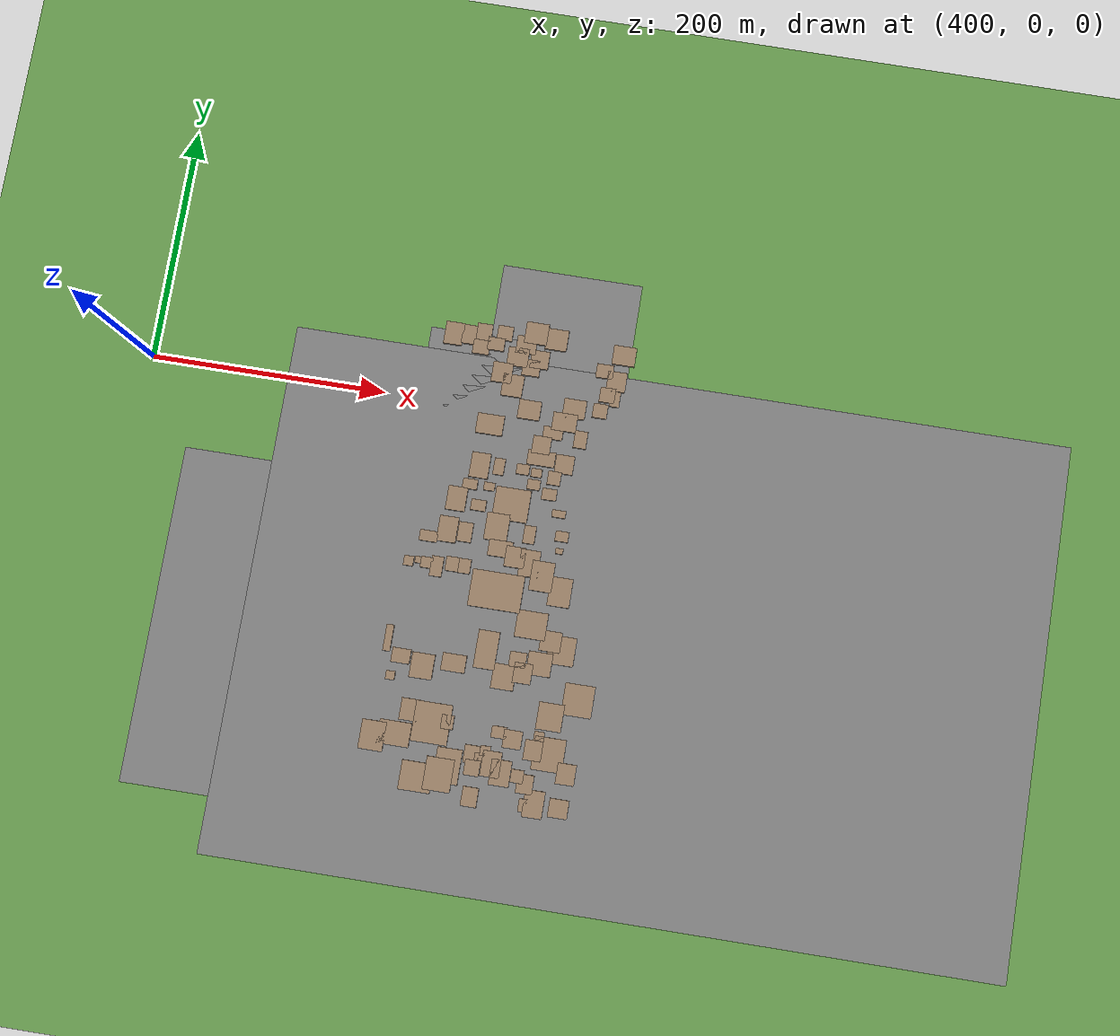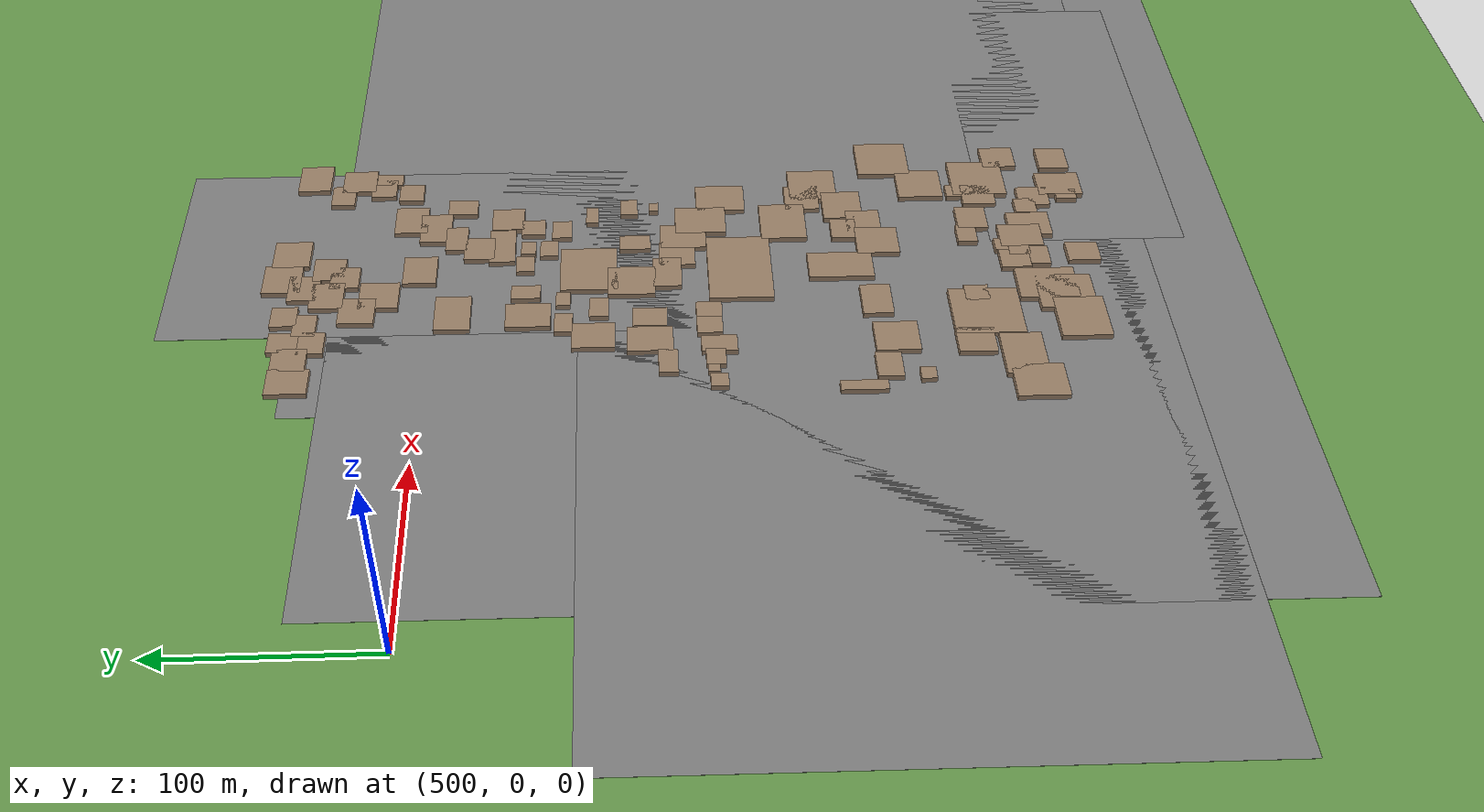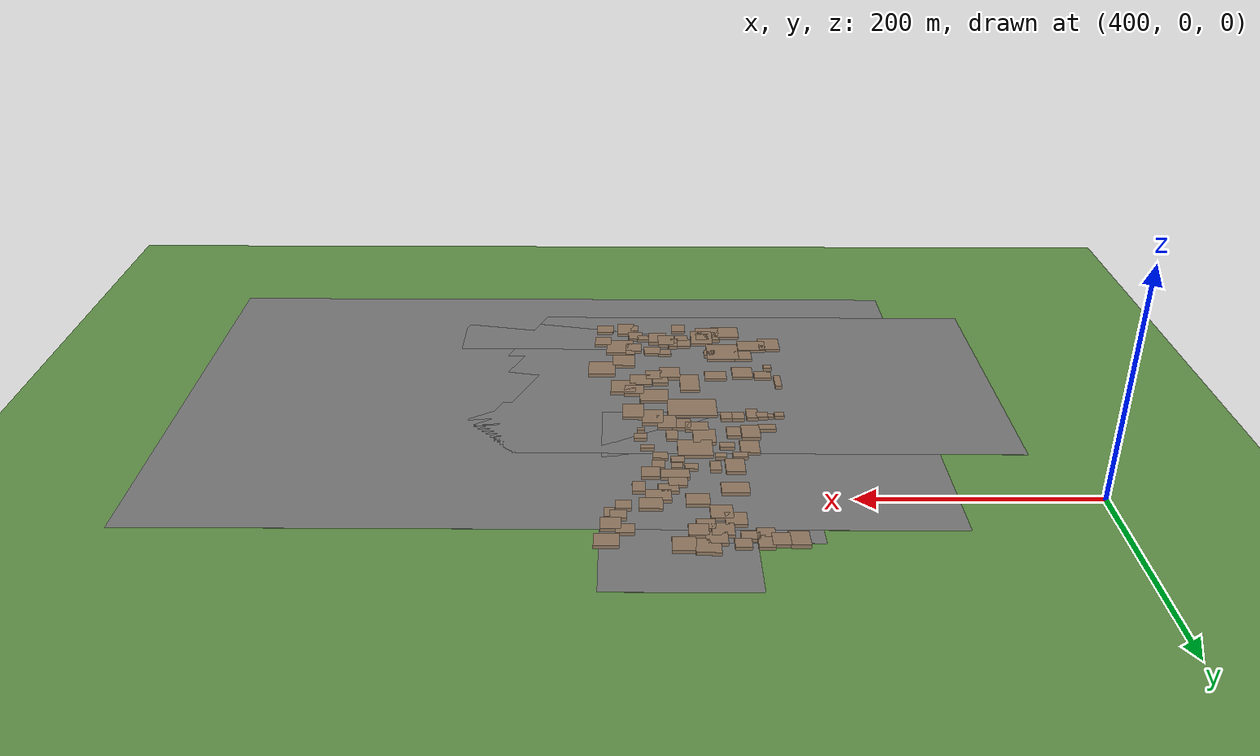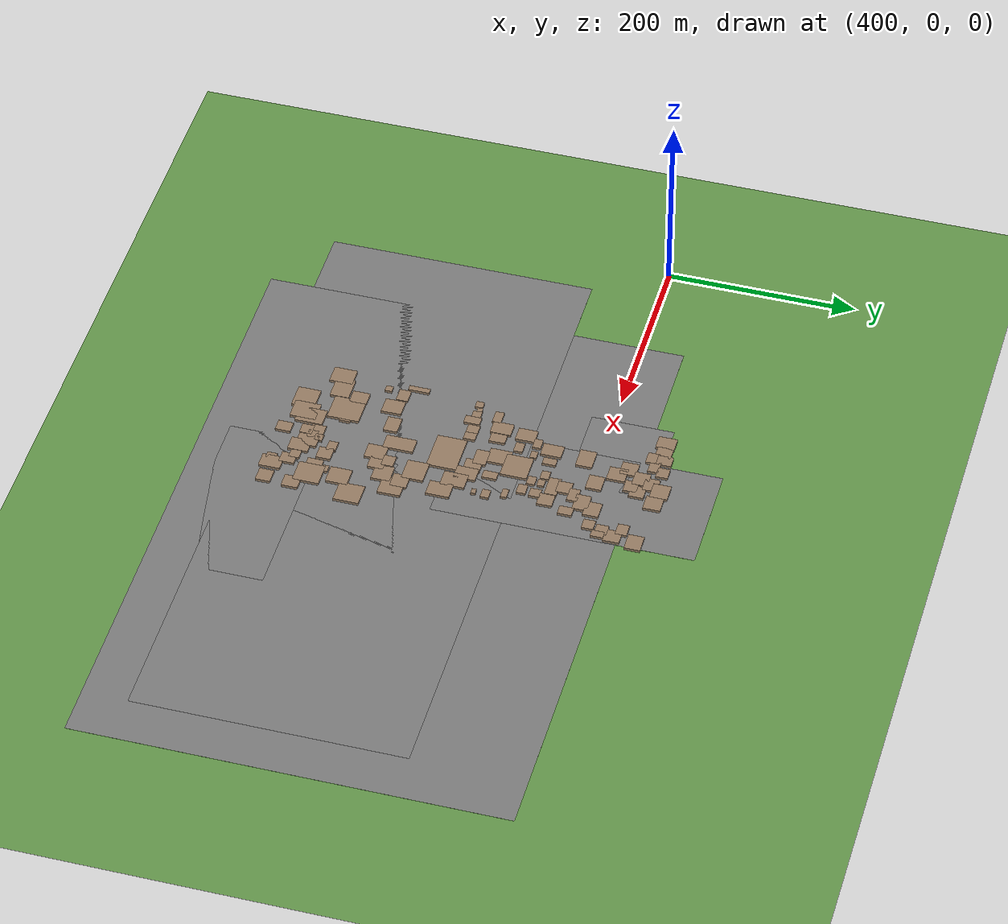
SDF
<sdf version="1.9">
 <world name="kimje_farmland">
  <model name="ground_plane">
   <static>true</static>
   <link name="link">
    <collision name="collision">
     <geometry><plane><normal>0 0 1</normal><size>2000 2000</size></plane></geometry>
    </collision>
    <visual name="visual">
     <geometry><plane><normal>0 0 1</normal><size>2000 2000</size></plane></geometry>
     <material><ambient>0.4 0.6 0.3 1</ambient><diffuse>0.4 0.6 0.3 1</diffuse></material>
    </visual>
   </link>
  </model>
  <model name="osm_2">
   <static>true</static>
   <pose>848.91 -178.82 0.040 0 0 0</pose>
   <link name="link">
    <collision name="collision"><geometry><box><size>665.56 447.34 0.080</size></box></geometry></collision>
    <visual name="visual">
     <geometry><box><size>665.56 447.34 0.080</size></box></geometry>
     <material><ambient>0.5 0.5 0.5 1</ambient><diffuse>0.5 0.5 0.5 1</diffuse></material>
    </visual>
   </link>
  </model>
  <model name="osm_8">
   <static>true</static>
   <pose>841.23 -327.30 0.040 0 0 0</pose>
   <link name="link">
    <collision name="collision"><geometry><box><size>201.72 97.64 0.080</size></box></geometry></collision>
    <visual name="visual">
     <geometry><box><size>201.72 97.64 0.080</size></box></geometry>
     <material><ambient>0.5 0.5 0.5 1</ambient><diffuse>0.5 0.5 0.5 1</diffuse></material>
    </visual>
   </link>
  </model>
  <model name="osm_14">
   <static>true</static>
   <pose>741.77 -10.32 0.040 0 0 0</pose>
   <link name="link">
    <collision name="collision"><geometry><box><size>120.49 273.38 0.080</size></box></geometry></collision>
    <visual name="visual">
     <geometry><box><size>120.49 273.38 0.080</size></box></geometry>
     <material><ambient>0.5 0.5 0.5 1</ambient><diffuse>0.5 0.5 0.5 1</diffuse></material>
    </visual>
   </link>
  </model>
  <model name="osm_36">
   <static>true</static>
   <pose>678.94 19.57 0.040 0 0 0</pose>
   <link name="link">
    <collision name="collision"><geometry><box><size>98.88 86.79 0.080</size></box></geometry></collision>
    <visual name="visual">
     <geometry><box><size>98.88 86.79 0.080</size></box></geometry>
     <material><ambient>0.5 0.5 0.5 1</ambient><diffuse>0.5 0.5 0.5 1</diffuse></material>
    </visual>
   </link>
  </model>
  <model name="osm_84">
   <static>true</static>
   <pose>786.82 -214.13 0.040 0 0 0</pose>
   <link name="link">
    <collision name="collision"><geometry><box><size>689.80 282.66 0.080</size></box></geometry></collision>
    <visual name="visual">
     <geometry><box><size>689.80 282.66 0.080</size></box></geometry>
     <material><ambient>0.5 0.5 0.5 1</ambient><diffuse>0.5 0.5 0.5 1</diffuse></material>
    </visual>
   </link>
  </model>
  <model name="osm_199">
   <static>true</static>
   <pose>658.45 -280.94 1.500 0 0 0</pose>
   <link name="link">
    <collision name="collision"><geometry><box><size>26.71 20.04 3.000</size></box></geometry></collision>
    <visual name="visual">
     <geometry><box><size>26.71 20.04 3.000</size></box></geometry>
     <material><ambient>0.6 0.5 0.4 1</ambient><diffuse>0.6 0.5 0.4 1</diffuse></material>
    </visual>
   </link>
  </model>
  <model name="osm_201">
   <static>true</static>
   <pose>803.54 -291.84 1.500 0 0 0</pose>
   <link name="link">
    <collision name="collision"><geometry><box><size>15.58 17.25 3.000</size></box></geometry></collision>
    <visual name="visual">
     <geometry><box><size>15.58 17.25 3.000</size></box></geometry>
     <material><ambient>0.6 0.5 0.4 1</ambient><diffuse>0.6 0.5 0.4 1</diffuse></material>
    </visual>
   </link>
  </model>
  <model name="osm_202">
   <static>true</static>
   <pose>786.92 -278.28 1.500 0 0 0</pose>
   <link name="link">
    <collision name="collision"><geometry><box><size>25.93 27.56 3.000</size></box></geometry></collision>
    <visual name="visual">
     <geometry><box><size>25.93 27.56 3.000</size></box></geometry>
     <material><ambient>0.6 0.5 0.4 1</ambient><diffuse>0.6 0.5 0.4 1</diffuse></material>
    </visual>
   </link>
  </model>
  <model name="osm_1157">
   <static>true</static>
   <pose>803.99 -230.90 1.500 0 0 0</pose>
   <link name="link">
    <collision name="collision"><geometry><box><size>25.01 26.59 3.000</size></box></geometry></collision>
    <visual name="visual">
     <geometry><box><size>25.01 26.59 3.000</size></box></geometry>
     <material><ambient>0.6 0.5 0.4 1</ambient><diffuse>0.6 0.5 0.4 1</diffuse></material>
    </visual>
   </link>
  </model>
  <model name="osm_1158">
   <static>true</static>
   <pose>783.18 -247.78 1.500 0 0 0</pose>
   <link name="link">
    <collision name="collision"><geometry><box><size>21.05 22.71 3.000</size></box></geometry></collision>
    <visual name="visual">
     <geometry><box><size>21.05 22.71 3.000</size></box></geometry>
     <material><ambient>0.6 0.5 0.4 1</ambient><diffuse>0.6 0.5 0.4 1</diffuse></material>
    </visual>
   </link>
  </model>
  <model name="osm_1159">
   <static>true</static>
   <pose>739.81 -221.30 1.500 0 0 0</pose>
   <link name="link">
    <collision name="collision"><geometry><box><size>18.96 21.02 3.000</size></box></geometry></collision>
    <visual name="visual">
     <geometry><box><size>18.96 21.02 3.000</size></box></geometry>
     <material><ambient>0.6 0.5 0.4 1</ambient><diffuse>0.6 0.5 0.4 1</diffuse></material>
    </visual>
   </link>
  </model>
  <model name="osm_1160">
   <static>true</static>
   <pose>754.90 -215.97 1.500 0 0 0</pose>
   <link name="link">
    <collision name="collision"><geometry><box><size>15.28 16.95 3.000</size></box></geometry></collision>
    <visual name="visual">
     <geometry><box><size>15.28 16.95 3.000</size></box></geometry>
     <material><ambient>0.6 0.5 0.4 1</ambient><diffuse>0.6 0.5 0.4 1</diffuse></material>
    </visual>
   </link>
  </model>
  <model name="osm_1161">
   <static>true</static>
   <pose>767.38 -206.30 1.500 0 0 0</pose>
   <link name="link">
    <collision name="collision"><geometry><box><size>20.24 19.60 3.000</size></box></geometry></collision>
    <visual name="visual">
     <geometry><box><size>20.24 19.60 3.000</size></box></geometry>
     <material><ambient>0.6 0.5 0.4 1</ambient><diffuse>0.6 0.5 0.4 1</diffuse></material>
    </visual>
   </link>
  </model>
  <model name="osm_1162">
   <static>true</static>
   <pose>749.17 -205.37 1.500 0 0 0</pose>
   <link name="link">
    <collision name="collision"><geometry><box><size>14.09 12.56 3.000</size></box></geometry></collision>
    <visual name="visual">
     <geometry><box><size>14.09 12.56 3.000</size></box></geometry>
     <material><ambient>0.6 0.5 0.4 1</ambient><diffuse>0.6 0.5 0.4 1</diffuse></material>
    </visual>
   </link>
  </model>
  <model name="osm_1163">
   <static>true</static>
   <pose>783.63 -192.51 1.500 0 0 0</pose>
   <link name="link">
    <collision name="collision"><geometry><box><size>22.82 23.97 3.000</size></box></geometry></collision>
    <visual name="visual">
     <geometry><box><size>22.82 23.97 3.000</size></box></geometry>
     <material><ambient>0.6 0.5 0.4 1</ambient><diffuse>0.6 0.5 0.4 1</diffuse></material>
    </visual>
   </link>
  </model>
  <model name="osm_1164">
   <static>true</static>
   <pose>773.58 -186.37 1.500 0 0 0</pose>
   <link name="link">
    <collision name="collision"><geometry><box><size>17.57 17.24 3.000</size></box></geometry></collision>
    <visual name="visual">
     <geometry><box><size>17.57 17.24 3.000</size></box></geometry>
     <material><ambient>0.6 0.5 0.4 1</ambient><diffuse>0.6 0.5 0.4 1</diffuse></material>
    </visual>
   </link>
  </model>
  <model name="osm_1165">
   <static>true</static>
   <pose>722.20 -201.43 1.500 0 0 0</pose>
   <link name="link">
    <collision name="collision"><geometry><box><size>17.69 31.86 3.000</size></box></geometry></collision>
    <visual name="visual">
     <geometry><box><size>17.69 31.86 3.000</size></box></geometry>
     <material><ambient>0.6 0.5 0.4 1</ambient><diffuse>0.6 0.5 0.4 1</diffuse></material>
    </visual>
   </link>
  </model>
  <model name="osm_1166">
   <static>true</static>
   <pose>755.55 -175.41 1.500 0 0 0</pose>
   <link name="link">
    <collision name="collision"><geometry><box><size>25.60 22.76 3.000</size></box></geometry></collision>
    <visual name="visual">
     <geometry><box><size>25.60 22.76 3.000</size></box></geometry>
     <material><ambient>0.6 0.5 0.4 1</ambient><diffuse>0.6 0.5 0.4 1</diffuse></material>
    </visual>
   </link>
  </model>
  <model name="osm_1167">
   <static>true</static>
   <pose>721.96 -151.86 1.500 0 0 0</pose>
   <link name="link">
    <collision name="collision"><geometry><box><size>43.97 31.18 3.000</size></box></geometry></collision>
    <visual name="visual">
     <geometry><box><size>43.97 31.18 3.000</size></box></geometry>
     <material><ambient>0.6 0.5 0.4 1</ambient><diffuse>0.6 0.5 0.4 1</diffuse></material>
    </visual>
   </link>
  </model>
  <model name="osm_1556">
   <static>true</static>
   <pose>737.44 67.86 1.500 0 0 0</pose>
   <link name="link">
    <collision name="collision"><geometry><box><size>18.34 18.17 3.000</size></box></geometry></collision>
    <visual name="visual">
     <geometry><box><size>18.34 18.17 3.000</size></box></geometry>
     <material><ambient>0.6 0.5 0.4 1</ambient><diffuse>0.6 0.5 0.4 1</diffuse></material>
    </visual>
   </link>
  </model>
  <model name="osm_1558">
   <static>true</static>
   <pose>719.40 70.59 1.500 0 0 0</pose>
   <link name="link">
    <collision name="collision"><geometry><box><size>19.36 18.53 3.000</size></box></geometry></collision>
    <visual name="visual">
     <geometry><box><size>19.36 18.53 3.000</size></box></geometry>
     <material><ambient>0.6 0.5 0.4 1</ambient><diffuse>0.6 0.5 0.4 1</diffuse></material>
    </visual>
   </link>
  </model>
  <model name="osm_1559">
   <static>true</static>
   <pose>712.49 59.36 1.500 0 0 0</pose>
   <link name="link">
    <collision name="collision"><geometry><box><size>17.07 15.17 3.000</size></box></geometry></collision>
    <visual name="visual">
     <geometry><box><size>17.07 15.17 3.000</size></box></geometry>
     <material><ambient>0.6 0.5 0.4 1</ambient><diffuse>0.6 0.5 0.4 1</diffuse></material>
    </visual>
   </link>
  </model>
  <model name="osm_1560">
   <static>true</static>
   <pose>706.99 47.84 1.500 0 0 0</pose>
   <link name="link">
    <collision name="collision"><geometry><box><size>17.68 16.21 3.000</size></box></geometry></collision>
    <visual name="visual">
     <geometry><box><size>17.68 16.21 3.000</size></box></geometry>
     <material><ambient>0.6 0.5 0.4 1</ambient><diffuse>0.6 0.5 0.4 1</diffuse></material>
    </visual>
   </link>
  </model>
  <model name="osm_1561">
   <static>true</static>
   <pose>719.65 40.27 1.500 0 0 0</pose>
   <link name="link">
    <collision name="collision"><geometry><box><size>14.86 13.99 3.000</size></box></geometry></collision>
    <visual name="visual">
     <geometry><box><size>14.86 13.99 3.000</size></box></geometry>
     <material><ambient>0.6 0.5 0.4 1</ambient><diffuse>0.6 0.5 0.4 1</diffuse></material>
    </visual>
   </link>
  </model>
  <model name="osm_1562">
   <static>true</static>
   <pose>725.70 48.37 1.500 0 0 0</pose>
   <link name="link">
    <collision name="collision"><geometry><box><size>15.64 15.51 3.000</size></box></geometry></collision>
    <visual name="visual">
     <geometry><box><size>15.64 15.51 3.000</size></box></geometry>
     <material><ambient>0.6 0.5 0.4 1</ambient><diffuse>0.6 0.5 0.4 1</diffuse></material>
    </visual>
   </link>
  </model>
  <model name="osm_1563">
   <static>true</static>
   <pose>695.94 32.56 1.500 0 0 0</pose>
   <link name="link">
    <collision name="collision"><geometry><box><size>17.11 17.34 3.000</size></box></geometry></collision>
    <visual name="visual">
     <geometry><box><size>17.11 17.34 3.000</size></box></geometry>
     <material><ambient>0.6 0.5 0.4 1</ambient><diffuse>0.6 0.5 0.4 1</diffuse></material>
    </visual>
   </link>
  </model>
  <model name="osm_1564">
   <static>true</static>
   <pose>706.49 22.73 1.500 0 0 0</pose>
   <link name="link">
    <collision name="collision"><geometry><box><size>17.82 19.08 3.000</size></box></geometry></collision>
    <visual name="visual">
     <geometry><box><size>17.82 19.08 3.000</size></box></geometry>
     <material><ambient>0.6 0.5 0.4 1</ambient><diffuse>0.6 0.5 0.4 1</diffuse></material>
    </visual>
   </link>
  </model>
  <model name="osm_1565">
   <static>true</static>
   <pose>724.11 4.18 1.500 0 0 0</pose>
   <link name="link">
    <collision name="collision"><geometry><box><size>19.02 16.34 3.000</size></box></geometry></collision>
    <visual name="visual">
     <geometry><box><size>19.02 16.34 3.000</size></box></geometry>
     <material><ambient>0.6 0.5 0.4 1</ambient><diffuse>0.6 0.5 0.4 1</diffuse></material>
    </visual>
   </link>
  </model>
  <model name="osm_1566">
   <static>true</static>
   <pose>693.14 -13.33 1.500 0 0 0</pose>
   <link name="link">
    <collision name="collision"><geometry><box><size>22.86 17.24 3.000</size></box></geometry></collision>
    <visual name="visual">
     <geometry><box><size>22.86 17.24 3.000</size></box></geometry>
     <material><ambient>0.6 0.5 0.4 1</ambient><diffuse>0.6 0.5 0.4 1</diffuse></material>
    </visual>
   </link>
  </model>
  <model name="osm_1570">
   <static>true</static>
   <pose>796.18 62.96 1.500 0 0 0</pose>
   <link name="link">
    <collision name="collision"><geometry><box><size>19.58 16.50 3.000</size></box></geometry></collision>
    <visual name="visual">
     <geometry><box><size>19.58 16.50 3.000</size></box></geometry>
     <material><ambient>0.6 0.5 0.4 1</ambient><diffuse>0.6 0.5 0.4 1</diffuse></material>
    </visual>
   </link>
  </model>
  <model name="osm_1571">
   <static>true</static>
   <pose>757.61 -134.01 1.500 0 0 0</pose>
   <link name="link">
    <collision name="collision"><geometry><box><size>18.99 25.33 3.000</size></box></geometry></collision>
    <visual name="visual">
     <geometry><box><size>18.99 25.33 3.000</size></box></geometry>
     <material><ambient>0.6 0.5 0.4 1</ambient><diffuse>0.6 0.5 0.4 1</diffuse></material>
    </visual>
   </link>
  </model>
  <model name="osm_1572">
   <static>true</static>
   <pose>745.42 -124.88 1.500 0 0 0</pose>
   <link name="link">
    <collision name="collision"><geometry><box><size>16.68 22.62 3.000</size></box></geometry></collision>
    <visual name="visual">
     <geometry><box><size>16.68 22.62 3.000</size></box></geometry>
     <material><ambient>0.6 0.5 0.4 1</ambient><diffuse>0.6 0.5 0.4 1</diffuse></material>
    </visual>
   </link>
  </model>
  <model name="osm_1573">
   <static>true</static>
   <pose>732.76 -121.52 1.500 0 0 0</pose>
   <link name="link">
    <collision name="collision"><geometry><box><size>16.69 17.54 3.000</size></box></geometry></collision>
    <visual name="visual">
     <geometry><box><size>16.69 17.54 3.000</size></box></geometry>
     <material><ambient>0.6 0.5 0.4 1</ambient><diffuse>0.6 0.5 0.4 1</diffuse></material>
    </visual>
   </link>
  </model>
  <model name="osm_1574">
   <static>true</static>
   <pose>719.41 -116.42 1.500 0 0 0</pose>
   <link name="link">
    <collision name="collision"><geometry><box><size>20.24 13.86 3.000</size></box></geometry></collision>
    <visual name="visual">
     <geometry><box><size>20.24 13.86 3.000</size></box></geometry>
     <material><ambient>0.6 0.5 0.4 1</ambient><diffuse>0.6 0.5 0.4 1</diffuse></material>
    </visual>
   </link>
  </model>
  <model name="osm_1575">
   <static>true</static>
   <pose>774.60 -144.69 1.500 0 0 0</pose>
   <link name="link">
    <collision name="collision"><geometry><box><size>18.83 24.53 3.000</size></box></geometry></collision>
    <visual name="visual">
     <geometry><box><size>18.83 24.53 3.000</size></box></geometry>
     <material><ambient>0.6 0.5 0.4 1</ambient><diffuse>0.6 0.5 0.4 1</diffuse></material>
    </visual>
   </link>
  </model>
  <model name="osm_1576">
   <static>true</static>
   <pose>697.13 -216.35 1.500 0 0 0</pose>
   <link name="link">
    <collision name="collision"><geometry><box><size>20.02 14.72 3.000</size></box></geometry></collision>
    <visual name="visual">
     <geometry><box><size>20.02 14.72 3.000</size></box></geometry>
     <material><ambient>0.6 0.5 0.4 1</ambient><diffuse>0.6 0.5 0.4 1</diffuse></material>
    </visual>
   </link>
  </model>
  <model name="osm_1577">
   <static>true</static>
   <pose>671.61 -222.96 1.500 0 0 0</pose>
   <link name="link">
    <collision name="collision"><geometry><box><size>19.00 21.06 3.000</size></box></geometry></collision>
    <visual name="visual">
     <geometry><box><size>19.00 21.06 3.000</size></box></geometry>
     <material><ambient>0.6 0.5 0.4 1</ambient><diffuse>0.6 0.5 0.4 1</diffuse></material>
    </visual>
   </link>
  </model>
  <model name="osm_1579">
   <static>true</static>
   <pose>640.00 -204.33 1.500 0 0 0</pose>
   <link name="link">
    <collision name="collision"><geometry><box><size>6.13 22.19 3.000</size></box></geometry></collision>
    <visual name="visual">
     <geometry><box><size>6.13 22.19 3.000</size></box></geometry>
     <material><ambient>0.6 0.5 0.4 1</ambient><diffuse>0.6 0.5 0.4 1</diffuse></material>
    </visual>
   </link>
  </model>
  <model name="osm_1583">
   <static>true</static>
   <pose>713.63 -98.80 1.500 0 0 0</pose>
   <link name="link">
    <collision name="collision"><geometry><box><size>19.49 23.23 3.000</size></box></geometry></collision>
    <visual name="visual">
     <geometry><box><size>19.49 23.23 3.000</size></box></geometry>
     <material><ambient>0.6 0.5 0.4 1</ambient><diffuse>0.6 0.5 0.4 1</diffuse></material>
    </visual>
   </link>
  </model>
  <model name="osm_1584">
   <static>true</static>
   <pose>741.52 -100.98 1.500 0 0 0</pose>
   <link name="link">
    <collision name="collision"><geometry><box><size>9.96 15.25 3.000</size></box></geometry></collision>
    <visual name="visual">
     <geometry><box><size>9.96 15.25 3.000</size></box></geometry>
     <material><ambient>0.6 0.5 0.4 1</ambient><diffuse>0.6 0.5 0.4 1</diffuse></material>
    </visual>
   </link>
  </model>
  <model name="osm_1585">
   <static>true</static>
   <pose>768.63 -98.28 1.500 0 0 0</pose>
   <link name="link">
    <collision name="collision"><geometry><box><size>11.15 8.73 3.000</size></box></geometry></collision>
    <visual name="visual">
     <geometry><box><size>11.15 8.73 3.000</size></box></geometry>
     <material><ambient>0.6 0.5 0.4 1</ambient><diffuse>0.6 0.5 0.4 1</diffuse></material>
    </visual>
   </link>
  </model>
  <model name="osm_1586">
   <static>true</static>
   <pose>762.97 -79.83 1.500 0 0 0</pose>
   <link name="link">
    <collision name="collision"><geometry><box><size>11.66 6.27 3.000</size></box></geometry></collision>
    <visual name="visual">
     <geometry><box><size>11.66 6.27 3.000</size></box></geometry>
     <material><ambient>0.6 0.5 0.4 1</ambient><diffuse>0.6 0.5 0.4 1</diffuse></material>
    </visual>
   </link>
  </model>
  <model name="osm_1587">
   <static>true</static>
   <pose>722.57 -78.15 1.500 0 0 0</pose>
   <link name="link">
    <collision name="collision"><geometry><box><size>29.79 27.71 3.000</size></box></geometry></collision>
    <visual name="visual">
     <geometry><box><size>29.79 27.71 3.000</size></box></geometry>
     <material><ambient>0.6 0.5 0.4 1</ambient><diffuse>0.6 0.5 0.4 1</diffuse></material>
    </visual>
   </link>
  </model>
  <model name="osm_1588">
   <static>true</static>
   <pose>752.35 -64.70 1.500 0 0 0</pose>
   <link name="link">
    <collision name="collision"><geometry><box><size>12.49 9.73 3.000</size></box></geometry></collision>
    <visual name="visual">
     <geometry><box><size>12.49 9.73 3.000</size></box></geometry>
     <material><ambient>0.6 0.5 0.4 1</ambient><diffuse>0.6 0.5 0.4 1</diffuse></material>
    </visual>
   </link>
  </model>
  <model name="osm_1589">
   <static>true</static>
   <pose>738.86 -48.32 1.500 0 0 0</pose>
   <link name="link">
    <collision name="collision"><geometry><box><size>9.09 7.26 3.000</size></box></geometry></collision>
    <visual name="visual">
     <geometry><box><size>9.09 7.26 3.000</size></box></geometry>
     <material><ambient>0.6 0.5 0.4 1</ambient><diffuse>0.6 0.5 0.4 1</diffuse></material>
    </visual>
   </link>
  </model>
  <model name="osm_1590">
   <static>true</static>
   <pose>738.11 -58.51 1.500 0 0 0</pose>
   <link name="link">
    <collision name="collision"><geometry><box><size>10.98 8.75 3.000</size></box></geometry></collision>
    <visual name="visual">
     <geometry><box><size>10.98 8.75 3.000</size></box></geometry>
     <material><ambient>0.6 0.5 0.4 1</ambient><diffuse>0.6 0.5 0.4 1</diffuse></material>
    </visual>
   </link>
  </model>
  <model name="osm_1591">
   <static>true</static>
   <pose>727.06 -47.06 1.500 0 0 0</pose>
   <link name="link">
    <collision name="collision"><geometry><box><size>11.01 8.86 3.000</size></box></geometry></collision>
    <visual name="visual">
     <geometry><box><size>11.01 8.86 3.000</size></box></geometry>
     <material><ambient>0.6 0.5 0.4 1</ambient><diffuse>0.6 0.5 0.4 1</diffuse></material>
    </visual>
   </link>
  </model>
  <model name="osm_1592">
   <static>true</static>
   <pose>740.77 -35.43 1.500 0 0 0</pose>
   <link name="link">
    <collision name="collision"><geometry><box><size>23.42 12.76 3.000</size></box></geometry></collision>
    <visual name="visual">
     <geometry><box><size>23.42 12.76 3.000</size></box></geometry>
     <material><ambient>0.6 0.5 0.4 1</ambient><diffuse>0.6 0.5 0.4 1</diffuse></material>
    </visual>
   </link>
  </model>
  <model name="osm_1593">
   <static>true</static>
   <pose>739.08 -24.06 1.500 0 0 0</pose>
   <link name="link">
    <collision name="collision"><geometry><box><size>15.42 15.04 3.000</size></box></geometry></collision>
    <visual name="visual">
     <geometry><box><size>15.42 15.04 3.000</size></box></geometry>
     <material><ambient>0.6 0.5 0.4 1</ambient><diffuse>0.6 0.5 0.4 1</diffuse></material>
    </visual>
   </link>
  </model>
  <model name="osm_1594">
   <static>true</static>
   <pose>760.96 -37.63 1.500 0 0 0</pose>
   <link name="link">
    <collision name="collision"><geometry><box><size>15.65 16.00 3.000</size></box></geometry></collision>
    <visual name="visual">
     <geometry><box><size>15.65 16.00 3.000</size></box></geometry>
     <material><ambient>0.6 0.5 0.4 1</ambient><diffuse>0.6 0.5 0.4 1</diffuse></material>
    </visual>
   </link>
  </model>
  <model name="osm_1595">
   <static>true</static>
   <pose>754.25 -50.51 1.500 0 0 0</pose>
   <link name="link">
    <collision name="collision"><geometry><box><size>11.00 11.66 3.000</size></box></geometry></collision>
    <visual name="visual">
     <geometry><box><size>11.00 11.66 3.000</size></box></geometry>
     <material><ambient>0.6 0.5 0.4 1</ambient><diffuse>0.6 0.5 0.4 1</diffuse></material>
    </visual>
   </link>
  </model>
  <model name="osm_1596">
   <static>true</static>
   <pose>755.23 -1.71 1.500 0 0 0</pose>
   <link name="link">
    <collision name="collision"><geometry><box><size>20.72 15.53 3.000</size></box></geometry></collision>
    <visual name="visual">
     <geometry><box><size>20.72 15.53 3.000</size></box></geometry>
     <material><ambient>0.6 0.5 0.4 1</ambient><diffuse>0.6 0.5 0.4 1</diffuse></material>
    </visual>
   </link>
  </model>
  <model name="osm_1597">
   <static>true</static>
   <pose>770.86 -14.44 1.500 0 0 0</pose>
   <link name="link">
    <collision name="collision"><geometry><box><size>10.95 14.77 3.000</size></box></geometry></collision>
    <visual name="visual">
     <geometry><box><size>10.95 14.77 3.000</size></box></geometry>
     <material><ambient>0.6 0.5 0.4 1</ambient><diffuse>0.6 0.5 0.4 1</diffuse></material>
    </visual>
   </link>
  </model>
  <model name="osm_1598">
   <static>true</static>
   <pose>783.31 12.60 1.500 0 0 0</pose>
   <link name="link">
    <collision name="collision"><geometry><box><size>12.40 12.33 3.000</size></box></geometry></collision>
    <visual name="visual">
     <geometry><box><size>12.40 12.33 3.000</size></box></geometry>
     <material><ambient>0.6 0.5 0.4 1</ambient><diffuse>0.6 0.5 0.4 1</diffuse></material>
    </visual>
   </link>
  </model>
  <model name="osm_1599">
   <static>true</static>
   <pose>761.63 10.90 1.500 0 0 0</pose>
   <link name="link">
    <collision name="collision"><geometry><box><size>19.20 16.44 3.000</size></box></geometry></collision>
    <visual name="visual">
     <geometry><box><size>19.20 16.44 3.000</size></box></geometry>
     <material><ambient>0.6 0.5 0.4 1</ambient><diffuse>0.6 0.5 0.4 1</diffuse></material>
    </visual>
   </link>
  </model>
  <model name="osm_1600">
   <static>true</static>
   <pose>787.25 26.99 1.500 0 0 0</pose>
   <link name="link">
    <collision name="collision"><geometry><box><size>12.87 12.74 3.000</size></box></geometry></collision>
    <visual name="visual">
     <geometry><box><size>12.87 12.74 3.000</size></box></geometry>
     <material><ambient>0.6 0.5 0.4 1</ambient><diffuse>0.6 0.5 0.4 1</diffuse></material>
    </visual>
   </link>
  </model>
  <model name="osm_1601">
   <static>true</static>
   <pose>794.21 24.57 1.500 0 0 0</pose>
   <link name="link">
    <collision name="collision"><geometry><box><size>8.30 13.29 3.000</size></box></geometry></collision>
    <visual name="visual">
     <geometry><box><size>8.30 13.29 3.000</size></box></geometry>
     <material><ambient>0.6 0.5 0.4 1</ambient><diffuse>0.6 0.5 0.4 1</diffuse></material>
    </visual>
   </link>
  </model>
  <model name="osm_1602">
   <static>true</static>
   <pose>793.19 39.87 1.500 0 0 0</pose>
   <link name="link">
    <collision name="collision"><geometry><box><size>16.31 16.95 3.000</size></box></geometry></collision>
    <visual name="visual">
     <geometry><box><size>16.31 16.95 3.000</size></box></geometry>
     <material><ambient>0.6 0.5 0.4 1</ambient><diffuse>0.6 0.5 0.4 1</diffuse></material>
    </visual>
   </link>
  </model>
  <model name="osm_1603">
   <static>true</static>
   <pose>781.90 47.17 1.500 0 0 0</pose>
   <link name="link">
    <collision name="collision"><geometry><box><size>14.39 11.91 3.000</size></box></geometry></collision>
    <visual name="visual">
     <geometry><box><size>14.39 11.91 3.000</size></box></geometry>
     <material><ambient>0.6 0.5 0.4 1</ambient><diffuse>0.6 0.5 0.4 1</diffuse></material>
    </visual>
   </link>
  </model>
  <model name="osm_1604">
   <static>true</static>
   <pose>768.45 -110.76 1.500 0 0 0</pose>
   <link name="link">
    <collision name="collision"><geometry><box><size>6.28 4.81 3.000</size></box></geometry></collision>
    <visual name="visual">
     <geometry><box><size>6.28 4.81 3.000</size></box></geometry>
     <material><ambient>0.6 0.5 0.4 1</ambient><diffuse>0.6 0.5 0.4 1</diffuse></material>
    </visual>
   </link>
  </model>
  <model name="osm_1605">
   <static>true</static>
   <pose>746.97 -12.51 1.500 0 0 0</pose>
   <link name="link">
    <collision name="collision"><geometry><box><size>16.83 10.75 3.000</size></box></geometry></collision>
    <visual name="visual">
     <geometry><box><size>16.83 10.75 3.000</size></box></geometry>
     <material><ambient>0.6 0.5 0.4 1</ambient><diffuse>0.6 0.5 0.4 1</diffuse></material>
    </visual>
   </link>
  </model>
  <model name="osm_1606">
   <static>true</static>
   <pose>690.70 -49.31 1.500 0 0 0</pose>
   <link name="link">
    <collision name="collision"><geometry><box><size>16.09 21.60 3.000</size></box></geometry></collision>
    <visual name="visual">
     <geometry><box><size>16.09 21.60 3.000</size></box></geometry>
     <material><ambient>0.6 0.5 0.4 1</ambient><diffuse>0.6 0.5 0.4 1</diffuse></material>
    </visual>
   </link>
  </model>
  <model name="osm_1607">
   <static>true</static>
   <pose>701.52 -65.94 1.500 0 0 0</pose>
   <link name="link">
    <collision name="collision"><geometry><box><size>9.34 6.94 3.000</size></box></geometry></collision>
    <visual name="visual">
     <geometry><box><size>9.34 6.94 3.000</size></box></geometry>
     <material><ambient>0.6 0.5 0.4 1</ambient><diffuse>0.6 0.5 0.4 1</diffuse></material>
    </visual>
   </link>
  </model>
  <model name="osm_1608">
   <static>true</static>
   <pose>706.86 -47.85 1.500 0 0 0</pose>
   <link name="link">
    <collision name="collision"><geometry><box><size>9.08 14.14 3.000</size></box></geometry></collision>
    <visual name="visual">
     <geometry><box><size>9.08 14.14 3.000</size></box></geometry>
     <material><ambient>0.6 0.5 0.4 1</ambient><diffuse>0.6 0.5 0.4 1</diffuse></material>
    </visual>
   </link>
  </model>
  <model name="osm_1609">
   <static>true</static>
   <pose>685.14 -66.21 1.500 0 0 0</pose>
   <link name="link">
    <collision name="collision"><geometry><box><size>12.54 8.67 3.000</size></box></geometry></collision>
    <visual name="visual">
     <geometry><box><size>12.54 8.67 3.000</size></box></geometry>
     <material><ambient>0.6 0.5 0.4 1</ambient><diffuse>0.6 0.5 0.4 1</diffuse></material>
    </visual>
   </link>
  </model>
  <model name="osm_1610">
   <static>true</static>
   <pose>676.08 -80.26 1.500 0 0 0</pose>
   <link name="link">
    <collision name="collision"><geometry><box><size>16.42 20.48 3.000</size></box></geometry></collision>
    <visual name="visual">
     <geometry><box><size>16.42 20.48 3.000</size></box></geometry>
     <material><ambient>0.6 0.5 0.4 1</ambient><diffuse>0.6 0.5 0.4 1</diffuse></material>
    </visual>
   </link>
  </model>
  <model name="osm_1611">
   <static>true</static>
   <pose>695.12 -83.01 1.500 0 0 0</pose>
   <link name="link">
    <collision name="collision"><geometry><box><size>12.75 9.36 3.000</size></box></geometry></collision>
    <visual name="visual">
     <geometry><box><size>12.75 9.36 3.000</size></box></geometry>
     <material><ambient>0.6 0.5 0.4 1</ambient><diffuse>0.6 0.5 0.4 1</diffuse></material>
    </visual>
   </link>
  </model>
  <model name="osm_1612">
   <static>true</static>
   <pose>687.91 -107.18 1.500 0 0 0</pose>
   <link name="link">
    <collision name="collision"><geometry><box><size>12.13 16.58 3.000</size></box></geometry></collision>
    <visual name="visual">
     <geometry><box><size>12.13 16.58 3.000</size></box></geometry>
     <material><ambient>0.6 0.5 0.4 1</ambient><diffuse>0.6 0.5 0.4 1</diffuse></material>
    </visual>
   </link>
  </model>
  <model name="osm_1613">
   <static>true</static>
   <pose>673.11 -106.97 1.500 0 0 0</pose>
   <link name="link">
    <collision name="collision"><geometry><box><size>16.13 21.76 3.000</size></box></geometry></collision>
    <visual name="visual">
     <geometry><box><size>16.13 21.76 3.000</size></box></geometry>
     <material><ambient>0.6 0.5 0.4 1</ambient><diffuse>0.6 0.5 0.4 1</diffuse></material>
    </visual>
   </link>
  </model>
  <model name="osm_1614">
   <static>true</static>
   <pose>658.22 -115.15 1.500 0 0 0</pose>
   <link name="link">
    <collision name="collision"><geometry><box><size>15.13 9.14 3.000</size></box></geometry></collision>
    <visual name="visual">
     <geometry><box><size>15.13 9.14 3.000</size></box></geometry>
     <material><ambient>0.6 0.5 0.4 1</ambient><diffuse>0.6 0.5 0.4 1</diffuse></material>
    </visual>
   </link>
  </model>
  <model name="osm_1627">
   <static>true</static>
   <pose>692.28 -135.56 1.500 0 0 0</pose>
   <link name="link">
    <collision name="collision"><geometry><box><size>10.15 12.37 3.000</size></box></geometry></collision>
    <visual name="visual">
     <geometry><box><size>10.15 12.37 3.000</size></box></geometry>
     <material><ambient>0.6 0.5 0.4 1</ambient><diffuse>0.6 0.5 0.4 1</diffuse></material>
    </visual>
   </link>
  </model>
  <model name="osm_1628">
   <static>true</static>
   <pose>681.94 -135.44 1.500 0 0 0</pose>
   <link name="link">
    <collision name="collision"><geometry><box><size>11.15 12.23 3.000</size></box></geometry></collision>
    <visual name="visual">
     <geometry><box><size>11.15 12.23 3.000</size></box></geometry>
     <material><ambient>0.6 0.5 0.4 1</ambient><diffuse>0.6 0.5 0.4 1</diffuse></material>
    </visual>
   </link>
  </model>
  <model name="osm_1629">
   <static>true</static>
   <pose>669.31 -139.40 1.500 0 0 0</pose>
   <link name="link">
    <collision name="collision"><geometry><box><size>10.22 16.97 3.000</size></box></geometry></collision>
    <visual name="visual">
     <geometry><box><size>10.22 16.97 3.000</size></box></geometry>
     <material><ambient>0.6 0.5 0.4 1</ambient><diffuse>0.6 0.5 0.4 1</diffuse></material>
    </visual>
   </link>
  </model>
  <model name="osm_1630">
   <static>true</static>
   <pose>660.58 -137.44 1.500 0 0 0</pose>
   <link name="link">
    <collision name="collision"><geometry><box><size>10.27 9.28 3.000</size></box></geometry></collision>
    <visual name="visual">
     <geometry><box><size>10.27 9.28 3.000</size></box></geometry>
     <material><ambient>0.6 0.5 0.4 1</ambient><diffuse>0.6 0.5 0.4 1</diffuse></material>
    </visual>
   </link>
  </model>
  <model name="osm_1631">
   <static>true</static>
   <pose>653.17 -136.26 1.500 0 0 0</pose>
   <link name="link">
    <collision name="collision"><geometry><box><size>5.18 5.61 3.000</size></box></geometry></collision>
    <visual name="visual">
     <geometry><box><size>5.18 5.61 3.000</size></box></geometry>
     <material><ambient>0.6 0.5 0.4 1</ambient><diffuse>0.6 0.5 0.4 1</diffuse></material>
    </visual>
   </link>
  </model>
  <model name="osm_1632">
   <static>true</static>
   <pose>645.37 -138.38 1.500 0 0 0</pose>
   <link name="link">
    <collision name="collision"><geometry><box><size>8.21 8.30 3.000</size></box></geometry></collision>
    <visual name="visual">
     <geometry><box><size>8.21 8.30 3.000</size></box></geometry>
     <material><ambient>0.6 0.5 0.4 1</ambient><diffuse>0.6 0.5 0.4 1</diffuse></material>
    </visual>
   </link>
  </model>
  <model name="osm_1640">
   <static>true</static>
   <pose>692.86 66.62 1.500 0 0 0</pose>
   <link name="link">
    <collision name="collision"><geometry><box><size>13.10 12.51 3.000</size></box></geometry></collision>
    <visual name="visual">
     <geometry><box><size>13.10 12.51 3.000</size></box></geometry>
     <material><ambient>0.6 0.5 0.4 1</ambient><diffuse>0.6 0.5 0.4 1</diffuse></material>
    </visual>
   </link>
  </model>
  <model name="osm_1643">
   <static>true</static>
   <pose>686.76 56.17 1.500 0 0 0</pose>
   <link name="link">
    <collision name="collision"><geometry><box><size>14.42 11.03 3.000</size></box></geometry></collision>
    <visual name="visual">
     <geometry><box><size>14.42 11.03 3.000</size></box></geometry>
     <material><ambient>0.6 0.5 0.4 1</ambient><diffuse>0.6 0.5 0.4 1</diffuse></material>
    </visual>
   </link>
  </model>
  <model name="osm_1644">
   <static>true</static>
   <pose>675.26 64.20 1.500 0 0 0</pose>
   <link name="link">
    <collision name="collision"><geometry><box><size>12.95 15.90 3.000</size></box></geometry></collision>
    <visual name="visual">
     <geometry><box><size>12.95 15.90 3.000</size></box></geometry>
     <material><ambient>0.6 0.5 0.4 1</ambient><diffuse>0.6 0.5 0.4 1</diffuse></material>
    </visual>
   </link>
  </model>
  <model name="osm_1645">
   <static>true</static>
   <pose>674.62 51.72 1.500 0 0 0</pose>
   <link name="link">
    <collision name="collision"><geometry><box><size>14.12 12.35 3.000</size></box></geometry></collision>
    <visual name="visual">
     <geometry><box><size>14.12 12.35 3.000</size></box></geometry>
     <material><ambient>0.6 0.5 0.4 1</ambient><diffuse>0.6 0.5 0.4 1</diffuse></material>
    </visual>
   </link>
  </model>
  <model name="osm_1646">
   <static>true</static>
   <pose>663.82 60.88 1.500 0 0 0</pose>
   <link name="link">
    <collision name="collision"><geometry><box><size>14.17 16.36 3.000</size></box></geometry></collision>
    <visual name="visual">
     <geometry><box><size>14.17 16.36 3.000</size></box></geometry>
     <material><ambient>0.6 0.5 0.4 1</ambient><diffuse>0.6 0.5 0.4 1</diffuse></material>
    </visual>
   </link>
  </model>
  <model name="osm_1647">
   <static>true</static>
   <pose>649.87 59.82 1.500 0 0 0</pose>
   <link name="link">
    <collision name="collision"><geometry><box><size>15.92 19.47 3.000</size></box></geometry></collision>
    <visual name="visual">
     <geometry><box><size>15.92 19.47 3.000</size></box></geometry>
     <material><ambient>0.6 0.5 0.4 1</ambient><diffuse>0.6 0.5 0.4 1</diffuse></material>
    </visual>
   </link>
  </model>
  <model name="osm_1648">
   <static>true</static>
   <pose>652.95 -217.34 1.500 0 0 0</pose>
   <link name="link">
    <collision name="collision"><geometry><box><size>15.60 12.25 3.000</size></box></geometry></collision>
    <visual name="visual">
     <geometry><box><size>15.60 12.25 3.000</size></box></geometry>
     <material><ambient>0.6 0.5 0.4 1</ambient><diffuse>0.6 0.5 0.4 1</diffuse></material>
    </visual>
   </link>
  </model>
  <model name="osm_1650">
   <static>true</static>
   <pose>755.62 -270.79 1.500 0 0 0</pose>
   <link name="link">
    <collision name="collision"><geometry><box><size>15.49 15.17 3.000</size></box></geometry></collision>
    <visual name="visual">
     <geometry><box><size>15.49 15.17 3.000</size></box></geometry>
     <material><ambient>0.6 0.5 0.4 1</ambient><diffuse>0.6 0.5 0.4 1</diffuse></material>
    </visual>
   </link>
  </model>
  <model name="osm_1651">
   <static>true</static>
   <pose>743.60 -266.69 1.500 0 0 0</pose>
   <link name="link">
    <collision name="collision"><geometry><box><size>12.43 9.83 3.000</size></box></geometry></collision>
    <visual name="visual">
     <geometry><box><size>12.43 9.83 3.000</size></box></geometry>
     <material><ambient>0.6 0.5 0.4 1</ambient><diffuse>0.6 0.5 0.4 1</diffuse></material>
    </visual>
   </link>
  </model>
  <model name="osm_1652">
   <static>true</static>
   <pose>773.72 -276.93 1.500 0 0 0</pose>
   <link name="link">
    <collision name="collision"><geometry><box><size>14.79 16.72 3.000</size></box></geometry></collision>
    <visual name="visual">
     <geometry><box><size>14.79 16.72 3.000</size></box></geometry>
     <material><ambient>0.6 0.5 0.4 1</ambient><diffuse>0.6 0.5 0.4 1</diffuse></material>
    </visual>
   </link>
  </model>
  <model name="osm_1653">
   <static>true</static>
   <pose>776.80 -265.73 1.500 0 0 0</pose>
   <link name="link">
    <collision name="collision"><geometry><box><size>8.52 9.64 3.000</size></box></geometry></collision>
    <visual name="visual">
     <geometry><box><size>8.52 9.64 3.000</size></box></geometry>
     <material><ambient>0.6 0.5 0.4 1</ambient><diffuse>0.6 0.5 0.4 1</diffuse></material>
    </visual>
   </link>
  </model>
  <model name="osm_1654">
   <static>true</static>
   <pose>750.13 -299.17 1.500 0 0 0</pose>
   <link name="link">
    <collision name="collision"><geometry><box><size>16.91 21.31 3.000</size></box></geometry></collision>
    <visual name="visual">
     <geometry><box><size>16.91 21.31 3.000</size></box></geometry>
     <material><ambient>0.6 0.5 0.4 1</ambient><diffuse>0.6 0.5 0.4 1</diffuse></material>
    </visual>
   </link>
  </model>
  <model name="osm_1655">
   <static>true</static>
   <pose>741.47 -293.31 1.500 0 0 0</pose>
   <link name="link">
    <collision name="collision"><geometry><box><size>15.81 21.38 3.000</size></box></geometry></collision>
    <visual name="visual">
     <geometry><box><size>15.81 21.38 3.000</size></box></geometry>
     <material><ambient>0.6 0.5 0.4 1</ambient><diffuse>0.6 0.5 0.4 1</diffuse></material>
    </visual>
   </link>
  </model>
  <model name="osm_1656">
   <static>true</static>
   <pose>735.00 -283.36 1.500 0 0 0</pose>
   <link name="link">
    <collision name="collision"><geometry><box><size>8.49 8.20 3.000</size></box></geometry></collision>
    <visual name="visual">
     <geometry><box><size>8.49 8.20 3.000</size></box></geometry>
     <material><ambient>0.6 0.5 0.4 1</ambient><diffuse>0.6 0.5 0.4 1</diffuse></material>
    </visual>
   </link>
  </model>
  <model name="osm_1657">
   <static>true</static>
   <pose>731.92 -290.95 1.500 0 0 0</pose>
   <link name="link">
    <collision name="collision"><geometry><box><size>9.80 10.31 3.000</size></box></geometry></collision>
    <visual name="visual">
     <geometry><box><size>9.80 10.31 3.000</size></box></geometry>
     <material><ambient>0.6 0.5 0.4 1</ambient><diffuse>0.6 0.5 0.4 1</diffuse></material>
    </visual>
   </link>
  </model>
  <model name="osm_1658">
   <static>true</static>
   <pose>726.49 -298.62 1.500 0 0 0</pose>
   <link name="link">
    <collision name="collision"><geometry><box><size>12.71 12.92 3.000</size></box></geometry></collision>
    <visual name="visual">
     <geometry><box><size>12.71 12.92 3.000</size></box></geometry>
     <material><ambient>0.6 0.5 0.4 1</ambient><diffuse>0.6 0.5 0.4 1</diffuse></material>
    </visual>
   </link>
  </model>
  <model name="osm_1659">
   <static>true</static>
   <pose>724.35 -287.81 1.500 0 0 0</pose>
   <link name="link">
    <collision name="collision"><geometry><box><size>12.68 14.72 3.000</size></box></geometry></collision>
    <visual name="visual">
     <geometry><box><size>12.68 14.72 3.000</size></box></geometry>
     <material><ambient>0.6 0.5 0.4 1</ambient><diffuse>0.6 0.5 0.4 1</diffuse></material>
    </visual>
   </link>
  </model>
  <model name="osm_1660">
   <static>true</static>
   <pose>764.22 -299.74 1.500 0 0 0</pose>
   <link name="link">
    <collision name="collision"><geometry><box><size>10.58 10.88 3.000</size></box></geometry></collision>
    <visual name="visual">
     <geometry><box><size>10.58 10.88 3.000</size></box></geometry>
     <material><ambient>0.6 0.5 0.4 1</ambient><diffuse>0.6 0.5 0.4 1</diffuse></material>
    </visual>
   </link>
  </model>
  <model name="osm_1661">
   <static>true</static>
   <pose>771.56 -304.93 1.500 0 0 0</pose>
   <link name="link">
    <collision name="collision"><geometry><box><size>13.61 15.82 3.000</size></box></geometry></collision>
    <visual name="visual">
     <geometry><box><size>13.61 15.82 3.000</size></box></geometry>
     <material><ambient>0.6 0.5 0.4 1</ambient><diffuse>0.6 0.5 0.4 1</diffuse></material>
    </visual>
   </link>
  </model>
  <model name="osm_1662">
   <static>true</static>
   <pose>706.36 -300.32 1.500 0 0 0</pose>
   <link name="link">
    <collision name="collision"><geometry><box><size>20.85 28.98 3.000</size></box></geometry></collision>
    <visual name="visual">
     <geometry><box><size>20.85 28.98 3.000</size></box></geometry>
     <material><ambient>0.6 0.5 0.4 1</ambient><diffuse>0.6 0.5 0.4 1</diffuse></material>
    </visual>
   </link>
  </model>
  <model name="osm_1663">
   <static>true</static>
   <pose>700.19 -308.28 1.500 0 0 0</pose>
   <link name="link">
    <collision name="collision"><geometry><box><size>22.93 27.23 3.000</size></box></geometry></collision>
    <visual name="visual">
     <geometry><box><size>22.93 27.23 3.000</size></box></geometry>
     <material><ambient>0.6 0.5 0.4 1</ambient><diffuse>0.6 0.5 0.4 1</diffuse></material>
    </visual>
   </link>
  </model>
  <model name="osm_1664">
   <static>true</static>
   <pose>682.26 -312.92 1.500 0 0 0</pose>
   <link name="link">
    <collision name="collision"><geometry><box><size>26.45 24.13 3.000</size></box></geometry></collision>
    <visual name="visual">
     <geometry><box><size>26.45 24.13 3.000</size></box></geometry>
     <material><ambient>0.6 0.5 0.4 1</ambient><diffuse>0.6 0.5 0.4 1</diffuse></material>
    </visual>
   </link>
  </model>
  <model name="osm_1696">
   <static>true</static>
   <pose>801.91 -320.24 1.500 0 0 0</pose>
   <link name="link">
    <collision name="collision"><geometry><box><size>16.08 15.35 3.000</size></box></geometry></collision>
    <visual name="visual">
     <geometry><box><size>16.08 15.35 3.000</size></box></geometry>
     <material><ambient>0.6 0.5 0.4 1</ambient><diffuse>0.6 0.5 0.4 1</diffuse></material>
    </visual>
   </link>
  </model>
  <model name="osm_1700">
   <static>true</static>
   <pose>781.15 -319.85 1.500 0 0 0</pose>
   <link name="link">
    <collision name="collision"><geometry><box><size>16.70 22.40 3.000</size></box></geometry></collision>
    <visual name="visual">
     <geometry><box><size>16.70 22.40 3.000</size></box></geometry>
     <material><ambient>0.6 0.5 0.4 1</ambient><diffuse>0.6 0.5 0.4 1</diffuse></material>
    </visual>
   </link>
  </model>
  <model name="osm_1701">
   <static>true</static>
   <pose>772.66 -322.11 1.500 0 0 0</pose>
   <link name="link">
    <collision name="collision"><geometry><box><size>7.11 10.48 3.000</size></box></geometry></collision>
    <visual name="visual">
     <geometry><box><size>7.11 10.48 3.000</size></box></geometry>
     <material><ambient>0.6 0.5 0.4 1</ambient><diffuse>0.6 0.5 0.4 1</diffuse></material>
    </visual>
   </link>
  </model>
  <model name="osm_1702">
   <static>true</static>
   <pose>728.53 -322.18 1.500 0 0 0</pose>
   <link name="link">
    <collision name="collision"><geometry><box><size>13.15 16.00 3.000</size></box></geometry></collision>
    <visual name="visual">
     <geometry><box><size>13.15 16.00 3.000</size></box></geometry>
     <material><ambient>0.6 0.5 0.4 1</ambient><diffuse>0.6 0.5 0.4 1</diffuse></material>
    </visual>
   </link>
  </model>
  <model name="osm_1703">
   <static>true</static>
   <pose>687.52 -267.90 1.500 0 0 0</pose>
   <link name="link">
    <collision name="collision"><geometry><box><size>30.53 33.50 3.000</size></box></geometry></collision>
    <visual name="visual">
     <geometry><box><size>30.53 33.50 3.000</size></box></geometry>
     <material><ambient>0.6 0.5 0.4 1</ambient><diffuse>0.6 0.5 0.4 1</diffuse></material>
    </visual>
   </link>
  </model>
  <model name="osm_1704">
   <static>true</static>
   <pose>700.26 -265.10 1.500 0 0 0</pose>
   <link name="link">
    <collision name="collision"><geometry><box><size>10.24 11.68 3.000</size></box></geometry></collision>
    <visual name="visual">
     <geometry><box><size>10.24 11.68 3.000</size></box></geometry>
     <material><ambient>0.6 0.5 0.4 1</ambient><diffuse>0.6 0.5 0.4 1</diffuse></material>
    </visual>
   </link>
  </model>
  <model name="osm_1705">
   <static>true</static>
   <pose>667.99 -259.96 1.500 0 0 0</pose>
   <link name="link">
    <collision name="collision"><geometry><box><size>15.89 18.13 3.000</size></box></geometry></collision>
    <visual name="visual">
     <geometry><box><size>15.89 18.13 3.000</size></box></geometry>
     <material><ambient>0.6 0.5 0.4 1</ambient><diffuse>0.6 0.5 0.4 1</diffuse></material>
    </visual>
   </link>
  </model>
  <model name="osm_1706">
   <static>true</static>
   <pose>640.97 -285.40 1.500 0 0 0</pose>
   <link name="link">
    <collision name="collision"><geometry><box><size>20.21 24.36 3.000</size></box></geometry></collision>
    <visual name="visual">
     <geometry><box><size>20.21 24.36 3.000</size></box></geometry>
     <material><ambient>0.6 0.5 0.4 1</ambient><diffuse>0.6 0.5 0.4 1</diffuse></material>
    </visual>
   </link>
  </model>
  <model name="osm_1754">
   <static>true</static>
   <pose>646.98 -234.60 1.500 0 0 0</pose>
   <link name="link">
    <collision name="collision"><geometry><box><size>7.47 7.32 3.000</size></box></geometry></collision>
    <visual name="visual">
     <geometry><box><size>7.47 7.32 3.000</size></box></geometry>
     <material><ambient>0.6 0.5 0.4 1</ambient><diffuse>0.6 0.5 0.4 1</diffuse></material>
    </visual>
   </link>
  </model>
 </world>
</sdf>
